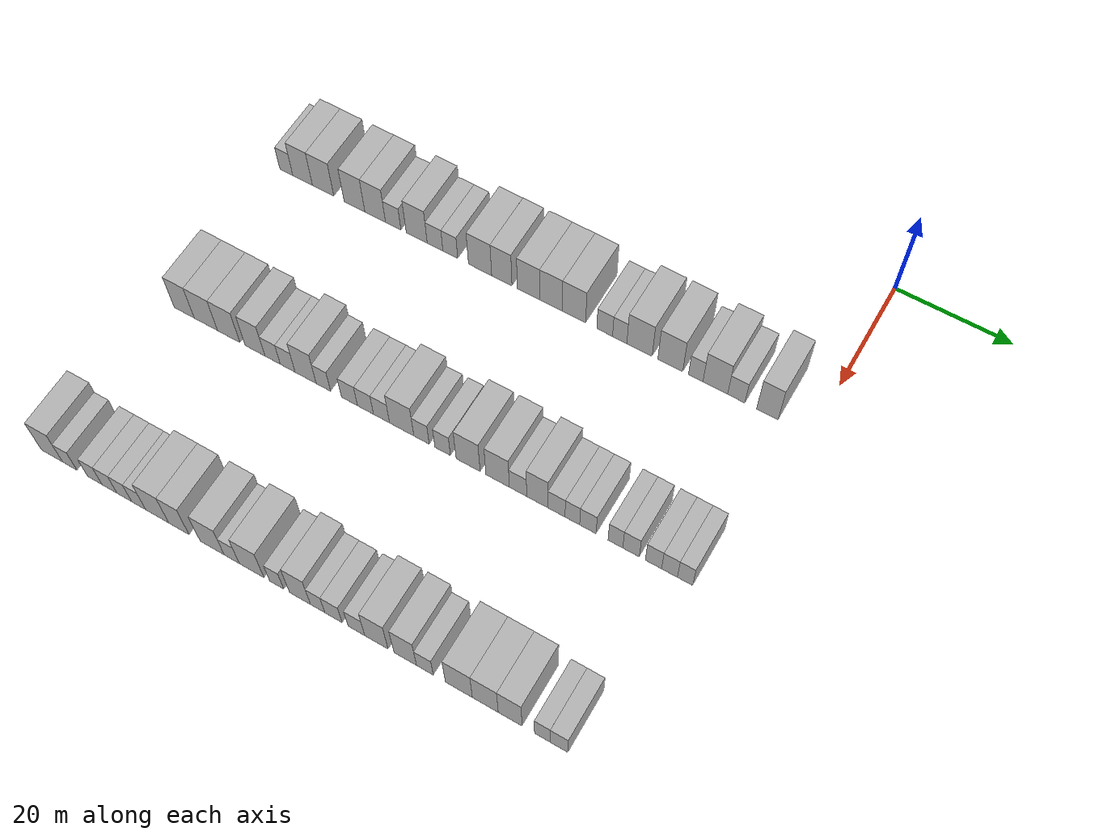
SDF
<sdf version="1.6">
 <world name="default">
  <model name="building_49">
   <static>1</static>
   <pose>25.0000 -95.3936 0 0.000000 0.000000 0.000000</pose>
   <link name="link">
    <pose>0 0 3.00 0 0 0</pose>
    <collision name="collision"><geometry><box><size>10.0000 2.5530 6.0000</size></box></geometry></collision>
    <visual name="visual">
     <cast_shadows>0</cast_shadows>
     <geometry><box><size>10.0000 2.5530 6.0000</size></box></geometry>
     <material>
      <script>
       <uri>model://HANNAS_wall/materials/scripts</uri>
       <uri>model://HANNAS_wall/materials/textures</uri>
       <name>vrc/HANNAS_wall</name>
      </script>
     </material>
    </visual>
   </link>
  </model>
  <model name="building_50">
   <static>1</static>
   <pose>25.0000 -92.1863 0 0.000000 0.000000 0.000000</pose>
   <link name="link">
    <pose>0 0 4.50 0 0 0</pose>
    <collision name="collision"><geometry><box><size>10.0000 3.8615 9.0000</size></box></geometry></collision>
    <visual name="visual">
     <cast_shadows>0</cast_shadows>
     <geometry><box><size>10.0000 3.8615 9.0000</size></box></geometry>
     <material>
      <script>
       <uri>model://HANNAS_wall/materials/scripts</uri>
       <uri>model://HANNAS_wall/materials/textures</uri>
       <name>vrc/HANNAS_wall</name>
      </script>
     </material>
    </visual>
   </link>
  </model>
  <model name="building_51">
   <static>1</static>
   <pose>25.0000 -88.1677 0 0.000000 0.000000 0.000000</pose>
   <link name="link">
    <pose>0 0 4.50 0 0 0</pose>
    <collision name="collision"><geometry><box><size>10.0000 4.1758 9.0000</size></box></geometry></collision>
    <visual name="visual">
     <cast_shadows>0</cast_shadows>
     <geometry><box><size>10.0000 4.1758 9.0000</size></box></geometry>
     <material>
      <script>
       <uri>model://HANNAS_wall/materials/scripts</uri>
       <uri>model://HANNAS_wall/materials/textures</uri>
       <name>vrc/HANNAS_wall</name>
      </script>
     </material>
    </visual>
   </link>
  </model>
  <model name="building_52">
   <static>1</static>
   <pose>25.0000 -82.0708 0 0.000000 0.000000 0.000000</pose>
   <link name="link">
    <pose>0 0 4.50 0 0 0</pose>
    <collision name="collision"><geometry><box><size>10.0000 4.0179 9.0000</size></box></geometry></collision>
    <visual name="visual">
     <cast_shadows>0</cast_shadows>
     <geometry><box><size>10.0000 4.0179 9.0000</size></box></geometry>
     <material>
      <script>
       <uri>model://HANNAS_wall/materials/scripts</uri>
       <uri>model://HANNAS_wall/materials/textures</uri>
       <name>vrc/HANNAS_wall</name>
      </script>
     </material>
    </visual>
   </link>
  </model>
  <model name="building_53">
   <static>1</static>
   <pose>25.0000 -78.0774 0 0.000000 0.000000 0.000000</pose>
   <link name="link">
    <pose>0 0 4.50 0 0 0</pose>
    <collision name="collision"><geometry><box><size>10.0000 3.9689 9.0000</size></box></geometry></collision>
    <visual name="visual">
     <cast_shadows>0</cast_shadows>
     <geometry><box><size>10.0000 3.9689 9.0000</size></box></geometry>
     <material>
      <script>
       <uri>model://HANNAS_wall/materials/scripts</uri>
       <uri>model://HANNAS_wall/materials/textures</uri>
       <name>vrc/HANNAS_wall</name>
      </script>
     </material>
    </visual>
   </link>
  </model>
  <model name="building_54">
   <static>1</static>
   <pose>25.0000 -74.6206 0 0.000000 0.000000 0.000000</pose>
   <link name="link">
    <pose>0 0 3.00 0 0 0</pose>
    <collision name="collision"><geometry><box><size>10.0000 2.9447 6.0000</size></box></geometry></collision>
    <visual name="visual">
     <cast_shadows>0</cast_shadows>
     <geometry><box><size>10.0000 2.9447 6.0000</size></box></geometry>
     <material>
      <script>
       <uri>model://HANNAS_wall/materials/scripts</uri>
       <uri>model://HANNAS_wall/materials/textures</uri>
       <name>vrc/HANNAS_wall</name>
      </script>
     </material>
    </visual>
   </link>
  </model>
  <model name="building_55">
   <static>1</static>
   <pose>25.0000 -70.1564 0 0.000000 0.000000 0.000000</pose>
   <link name="link">
    <pose>0 0 4.50 0 0 0</pose>
    <collision name="collision"><geometry><box><size>10.0000 3.9838 9.0000</size></box></geometry></collision>
    <visual name="visual">
     <cast_shadows>0</cast_shadows>
     <geometry><box><size>10.0000 3.9838 9.0000</size></box></geometry>
     <material>
      <script>
       <uri>model://HANNAS_wall/materials/scripts</uri>
       <uri>model://HANNAS_wall/materials/textures</uri>
       <name>vrc/HANNAS_wall</name>
      </script>
     </material>
    </visual>
   </link>
  </model>
  <model name="building_56">
   <static>1</static>
   <pose>25.0000 -66.6888 0 0.000000 0.000000 0.000000</pose>
   <link name="link">
    <pose>0 0 3.00 0 0 0</pose>
    <collision name="collision"><geometry><box><size>10.0000 2.9513 6.0000</size></box></geometry></collision>
    <visual name="visual">
     <cast_shadows>0</cast_shadows>
     <geometry><box><size>10.0000 2.9513 6.0000</size></box></geometry>
     <material>
      <script>
       <uri>model://HANNAS_wall/materials/scripts</uri>
       <uri>model://HANNAS_wall/materials/textures</uri>
       <name>vrc/HANNAS_wall</name>
      </script>
     </material>
    </visual>
   </link>
  </model>
  <model name="building_57">
   <static>1</static>
   <pose>25.0000 -63.8267 0 0.000000 0.000000 0.000000</pose>
   <link name="link">
    <pose>0 0 3.00 0 0 0</pose>
    <collision name="collision"><geometry><box><size>10.0000 2.7731 6.0000</size></box></geometry></collision>
    <visual name="visual">
     <cast_shadows>0</cast_shadows>
     <geometry><box><size>10.0000 2.7731 6.0000</size></box></geometry>
     <material>
      <script>
       <uri>model://HANNAS_wall/materials/scripts</uri>
       <uri>model://HANNAS_wall/materials/textures</uri>
       <name>vrc/HANNAS_wall</name>
      </script>
     </material>
    </visual>
   </link>
  </model>
  <model name="building_58">
   <static>1</static>
   <pose>25.0000 -58.2879 0 0.000000 0.000000 0.000000</pose>
   <link name="link">
    <pose>0 0 4.50 0 0 0</pose>
    <collision name="collision"><geometry><box><size>10.0000 4.3045 9.0000</size></box></geometry></collision>
    <visual name="visual">
     <cast_shadows>0</cast_shadows>
     <geometry><box><size>10.0000 4.3045 9.0000</size></box></geometry>
     <material>
      <script>
       <uri>model://HANNAS_wall/materials/scripts</uri>
       <uri>model://HANNAS_wall/materials/textures</uri>
       <name>vrc/HANNAS_wall</name>
      </script>
     </material>
    </visual>
   </link>
  </model>
  <model name="building_59">
   <static>1</static>
   <pose>25.0000 -54.2696 0 0.000000 0.000000 0.000000</pose>
   <link name="link">
    <pose>0 0 4.50 0 0 0</pose>
    <collision name="collision"><geometry><box><size>10.0000 3.7320 9.0000</size></box></geometry></collision>
    <visual name="visual">
     <cast_shadows>0</cast_shadows>
     <geometry><box><size>10.0000 3.7320 9.0000</size></box></geometry>
     <material>
      <script>
       <uri>model://HANNAS_wall/materials/scripts</uri>
       <uri>model://HANNAS_wall/materials/textures</uri>
       <name>vrc/HANNAS_wall</name>
      </script>
     </material>
    </visual>
   </link>
  </model>
  <model name="building_60">
   <static>1</static>
   <pose>25.0000 -49.3523 0 0.000000 0.000000 0.000000</pose>
   <link name="link">
    <pose>0 0 4.50 0 0 0</pose>
    <collision name="collision"><geometry><box><size>10.0000 4.1026 9.0000</size></box></geometry></collision>
    <visual name="visual">
     <cast_shadows>0</cast_shadows>
     <geometry><box><size>10.0000 4.1026 9.0000</size></box></geometry>
     <material>
      <script>
       <uri>model://HANNAS_wall/materials/scripts</uri>
       <uri>model://HANNAS_wall/materials/textures</uri>
       <name>vrc/HANNAS_wall</name>
      </script>
     </material>
    </visual>
   </link>
  </model>
  <model name="building_61">
   <static>1</static>
   <pose>25.0000 -45.2732 0 0.000000 0.000000 0.000000</pose>
   <link name="link">
    <pose>0 0 4.50 0 0 0</pose>
    <collision name="collision"><geometry><box><size>10.0000 4.0556 9.0000</size></box></geometry></collision>
    <visual name="visual">
     <cast_shadows>0</cast_shadows>
     <geometry><box><size>10.0000 4.0556 9.0000</size></box></geometry>
     <material>
      <script>
       <uri>model://HANNAS_wall/materials/scripts</uri>
       <uri>model://HANNAS_wall/materials/textures</uri>
       <name>vrc/HANNAS_wall</name>
      </script>
     </material>
    </visual>
   </link>
  </model>
  <model name="building_62">
   <static>1</static>
   <pose>25.0000 -41.1452 0 0.000000 0.000000 0.000000</pose>
   <link name="link">
    <pose>0 0 4.50 0 0 0</pose>
    <collision name="collision"><geometry><box><size>10.0000 4.2004 9.0000</size></box></geometry></collision>
    <visual name="visual">
     <cast_shadows>0</cast_shadows>
     <geometry><box><size>10.0000 4.2004 9.0000</size></box></geometry>
     <material>
      <script>
       <uri>model://HANNAS_wall/materials/scripts</uri>
       <uri>model://HANNAS_wall/materials/textures</uri>
       <name>vrc/HANNAS_wall</name>
      </script>
     </material>
    </visual>
   </link>
  </model>
  <model name="building_63">
   <static>1</static>
   <pose>25.0000 -35.6454 0 0.000000 0.000000 0.000000</pose>
   <link name="link">
    <pose>0 0 3.00 0 0 0</pose>
    <collision name="collision"><geometry><box><size>10.0000 2.7993 6.0000</size></box></geometry></collision>
    <visual name="visual">
     <cast_shadows>0</cast_shadows>
     <geometry><box><size>10.0000 2.7993 6.0000</size></box></geometry>
     <material>
      <script>
       <uri>model://HANNAS_wall/materials/scripts</uri>
       <uri>model://HANNAS_wall/materials/textures</uri>
       <name>vrc/HANNAS_wall</name>
      </script>
     </material>
    </visual>
   </link>
  </model>
  <model name="building_64">
   <static>1</static>
   <pose>25.0000 -32.9862 0 0.000000 0.000000 0.000000</pose>
   <link name="link">
    <pose>0 0 3.00 0 0 0</pose>
    <collision name="collision"><geometry><box><size>10.0000 2.5192 6.0000</size></box></geometry></collision>
    <visual name="visual">
     <cast_shadows>0</cast_shadows>
     <geometry><box><size>10.0000 2.5192 6.0000</size></box></geometry>
     <material>
      <script>
       <uri>model://HANNAS_wall/materials/scripts</uri>
       <uri>model://HANNAS_wall/materials/textures</uri>
       <name>vrc/HANNAS_wall</name>
      </script>
     </material>
    </visual>
   </link>
  </model>
  <model name="building_65">
   <static>1</static>
   <pose>25.0000 -29.4968 0 0.000000 0.000000 0.000000</pose>
   <link name="link">
    <pose>0 0 4.50 0 0 0</pose>
    <collision name="collision"><geometry><box><size>10.0000 4.4595 9.0000</size></box></geometry></collision>
    <visual name="visual">
     <cast_shadows>0</cast_shadows>
     <geometry><box><size>10.0000 4.4595 9.0000</size></box></geometry>
     <material>
      <script>
       <uri>model://HANNAS_wall/materials/scripts</uri>
       <uri>model://HANNAS_wall/materials/textures</uri>
       <name>vrc/HANNAS_wall</name>
      </script>
     </material>
    </visual>
   </link>
  </model>
  <model name="building_66">
   <static>1</static>
   <pose>25.0000 -24.0957 0 0.000000 0.000000 0.000000</pose>
   <link name="link">
    <pose>0 0 4.50 0 0 0</pose>
    <collision name="collision"><geometry><box><size>10.0000 4.3427 9.0000</size></box></geometry></collision>
    <visual name="visual">
     <cast_shadows>0</cast_shadows>
     <geometry><box><size>10.0000 4.3427 9.0000</size></box></geometry>
     <material>
      <script>
       <uri>model://HANNAS_wall/materials/scripts</uri>
       <uri>model://HANNAS_wall/materials/textures</uri>
       <name>vrc/HANNAS_wall</name>
      </script>
     </material>
    </visual>
   </link>
  </model>
  <model name="building_67">
   <static>1</static>
   <pose>25.0000 -19.6788 0 0.000000 0.000000 0.000000</pose>
   <link name="link">
    <pose>0 0 3.00 0 0 0</pose>
    <collision name="collision"><geometry><box><size>10.0000 2.4911 6.0000</size></box></geometry></collision>
    <visual name="visual">
     <cast_shadows>0</cast_shadows>
     <geometry><box><size>10.0000 2.4911 6.0000</size></box></geometry>
     <material>
      <script>
       <uri>model://HANNAS_wall/materials/scripts</uri>
       <uri>model://HANNAS_wall/materials/textures</uri>
       <name>vrc/HANNAS_wall</name>
      </script>
     </material>
    </visual>
   </link>
  </model>
  <model name="building_68">
   <static>1</static>
   <pose>25.0000 -16.3097 0 0.000000 0.000000 0.000000</pose>
   <link name="link">
    <pose>0 0 4.50 0 0 0</pose>
    <collision name="collision"><geometry><box><size>10.0000 4.2470 9.0000</size></box></geometry></collision>
    <visual name="visual">
     <cast_shadows>0</cast_shadows>
     <geometry><box><size>10.0000 4.2470 9.0000</size></box></geometry>
     <material>
      <script>
       <uri>model://HANNAS_wall/materials/scripts</uri>
       <uri>model://HANNAS_wall/materials/textures</uri>
       <name>vrc/HANNAS_wall</name>
      </script>
     </material>
    </visual>
   </link>
  </model>
  <model name="building_69">
   <static>1</static>
   <pose>25.0000 -12.7154 0 0.000000 0.000000 0.000000</pose>
   <link name="link">
    <pose>0 0 3.00 0 0 0</pose>
    <collision name="collision"><geometry><box><size>10.0000 2.9417 6.0000</size></box></geometry></collision>
    <visual name="visual">
     <cast_shadows>0</cast_shadows>
     <geometry><box><size>10.0000 2.9417 6.0000</size></box></geometry>
     <material>
      <script>
       <uri>model://HANNAS_wall/materials/scripts</uri>
       <uri>model://HANNAS_wall/materials/textures</uri>
       <name>vrc/HANNAS_wall</name>
      </script>
     </material>
    </visual>
   </link>
  </model>
  <model name="building_70">
   <static>1</static>
   <pose>25.0000 -7.4252 0 0.000000 0.000000 0.000000</pose>
   <link name="link">
    <pose>0 0 4.50 0 0 0</pose>
    <collision name="collision"><geometry><box><size>10.0000 3.6388 9.0000</size></box></geometry></collision>
    <visual name="visual">
     <cast_shadows>0</cast_shadows>
     <geometry><box><size>10.0000 3.6388 9.0000</size></box></geometry>
     <material>
      <script>
       <uri>model://HANNAS_wall/materials/scripts</uri>
       <uri>model://HANNAS_wall/materials/textures</uri>
       <name>vrc/HANNAS_wall</name>
      </script>
     </material>
    </visual>
   </link>
  </model>
  <model name="building_191">
   <static>1</static>
   <pose>55.0000 -94.1088 0 0.000000 0.000000 0.000000</pose>
   <link name="link">
    <pose>0 0 4.50 0 0 0</pose>
    <collision name="collision"><geometry><box><size>10.0000 3.8417 9.0000</size></box></geometry></collision>
    <visual name="visual">
     <cast_shadows>0</cast_shadows>
     <geometry><box><size>10.0000 3.8417 9.0000</size></box></geometry>
     <material>
      <script>
       <uri>model://HANNAS_wall/materials/scripts</uri>
       <uri>model://HANNAS_wall/materials/textures</uri>
       <name>vrc/HANNAS_wall</name>
      </script>
     </material>
    </visual>
   </link>
  </model>
  <model name="building_192">
   <static>1</static>
   <pose>55.0000 -89.9693 0 0.000000 0.000000 0.000000</pose>
   <link name="link">
    <pose>0 0 4.50 0 0 0</pose>
    <collision name="collision"><geometry><box><size>10.0000 4.4374 9.0000</size></box></geometry></collision>
    <visual name="visual">
     <cast_shadows>0</cast_shadows>
     <geometry><box><size>10.0000 4.4374 9.0000</size></box></geometry>
     <material>
      <script>
       <uri>model://HANNAS_wall/materials/scripts</uri>
       <uri>model://HANNAS_wall/materials/textures</uri>
       <name>vrc/HANNAS_wall</name>
      </script>
     </material>
    </visual>
   </link>
  </model>
  <model name="building_193">
   <static>1</static>
   <pose>55.0000 -85.6271 0 0.000000 0.000000 0.000000</pose>
   <link name="link">
    <pose>0 0 4.50 0 0 0</pose>
    <collision name="collision"><geometry><box><size>10.0000 4.2471 9.0000</size></box></geometry></collision>
    <visual name="visual">
     <cast_shadows>0</cast_shadows>
     <geometry><box><size>10.0000 4.2471 9.0000</size></box></geometry>
     <material>
      <script>
       <uri>model://HANNAS_wall/materials/scripts</uri>
       <uri>model://HANNAS_wall/materials/textures</uri>
       <name>vrc/HANNAS_wall</name>
      </script>
     </material>
    </visual>
   </link>
  </model>
  <model name="building_194">
   <static>1</static>
   <pose>55.0000 -80.6569 0 0.000000 0.000000 0.000000</pose>
   <link name="link">
    <pose>0 0 4.50 0 0 0</pose>
    <collision name="collision"><geometry><box><size>10.0000 3.6933 9.0000</size></box></geometry></collision>
    <visual name="visual">
     <cast_shadows>0</cast_shadows>
     <geometry><box><size>10.0000 3.6933 9.0000</size></box></geometry>
     <material>
      <script>
       <uri>model://HANNAS_wall/materials/scripts</uri>
       <uri>model://HANNAS_wall/materials/textures</uri>
       <name>vrc/HANNAS_wall</name>
      </script>
     </material>
    </visual>
   </link>
  </model>
  <model name="building_195">
   <static>1</static>
   <pose>55.0000 -77.3791 0 0.000000 0.000000 0.000000</pose>
   <link name="link">
    <pose>0 0 3.00 0 0 0</pose>
    <collision name="collision"><geometry><box><size>10.0000 2.8623 6.0000</size></box></geometry></collision>
    <visual name="visual">
     <cast_shadows>0</cast_shadows>
     <geometry><box><size>10.0000 2.8623 6.0000</size></box></geometry>
     <material>
      <script>
       <uri>model://HANNAS_wall/materials/scripts</uri>
       <uri>model://HANNAS_wall/materials/textures</uri>
       <name>vrc/HANNAS_wall</name>
      </script>
     </material>
    </visual>
   </link>
  </model>
  <model name="building_196">
   <static>1</static>
   <pose>55.0000 -74.5722 0 0.000000 0.000000 0.000000</pose>
   <link name="link">
    <pose>0 0 3.00 0 0 0</pose>
    <collision name="collision"><geometry><box><size>10.0000 2.7514 6.0000</size></box></geometry></collision>
    <visual name="visual">
     <cast_shadows>0</cast_shadows>
     <geometry><box><size>10.0000 2.7514 6.0000</size></box></geometry>
     <material>
      <script>
       <uri>model://HANNAS_wall/materials/scripts</uri>
       <uri>model://HANNAS_wall/materials/textures</uri>
       <name>vrc/HANNAS_wall</name>
      </script>
     </material>
    </visual>
   </link>
  </model>
  <model name="building_197">
   <static>1</static>
   <pose>55.0000 -71.2522 0 0.000000 0.000000 0.000000</pose>
   <link name="link">
    <pose>0 0 4.50 0 0 0</pose>
    <collision name="collision"><geometry><box><size>10.0000 3.8885 9.0000</size></box></geometry></collision>
    <visual name="visual">
     <cast_shadows>0</cast_shadows>
     <geometry><box><size>10.0000 3.8885 9.0000</size></box></geometry>
     <material>
      <script>
       <uri>model://HANNAS_wall/materials/scripts</uri>
       <uri>model://HANNAS_wall/materials/textures</uri>
       <name>vrc/HANNAS_wall</name>
      </script>
     </material>
    </visual>
   </link>
  </model>
  <model name="building_198">
   <static>1</static>
   <pose>55.0000 -67.9946 0 0.000000 0.000000 0.000000</pose>
   <link name="link">
    <pose>0 0 3.00 0 0 0</pose>
    <collision name="collision"><geometry><box><size>10.0000 2.6268 6.0000</size></box></geometry></collision>
    <visual name="visual">
     <cast_shadows>0</cast_shadows>
     <geometry><box><size>10.0000 2.6268 6.0000</size></box></geometry>
     <material>
      <script>
       <uri>model://HANNAS_wall/materials/scripts</uri>
       <uri>model://HANNAS_wall/materials/textures</uri>
       <name>vrc/HANNAS_wall</name>
      </script>
     </material>
    </visual>
   </link>
  </model>
  <model name="building_199">
   <static>1</static>
   <pose>55.0000 -63.2270 0 0.000000 0.000000 0.000000</pose>
   <link name="link">
    <pose>0 0 3.00 0 0 0</pose>
    <collision name="collision"><geometry><box><size>10.0000 2.9083 6.0000</size></box></geometry></collision>
    <visual name="visual">
     <cast_shadows>0</cast_shadows>
     <geometry><box><size>10.0000 2.9083 6.0000</size></box></geometry>
     <material>
      <script>
       <uri>model://HANNAS_wall/materials/scripts</uri>
       <uri>model://HANNAS_wall/materials/textures</uri>
       <name>vrc/HANNAS_wall</name>
      </script>
     </material>
    </visual>
   </link>
  </model>
  <model name="building_200">
   <static>1</static>
   <pose>55.0000 -60.3225 0 0.000000 0.000000 0.000000</pose>
   <link name="link">
    <pose>0 0 3.00 0 0 0</pose>
    <collision name="collision"><geometry><box><size>10.0000 2.9006 6.0000</size></box></geometry></collision>
    <visual name="visual">
     <cast_shadows>0</cast_shadows>
     <geometry><box><size>10.0000 2.9006 6.0000</size></box></geometry>
     <material>
      <script>
       <uri>model://HANNAS_wall/materials/scripts</uri>
       <uri>model://HANNAS_wall/materials/textures</uri>
       <name>vrc/HANNAS_wall</name>
      </script>
     </material>
    </visual>
   </link>
  </model>
  <model name="building_201">
   <static>1</static>
   <pose>55.0000 -57.4290 0 0.000000 0.000000 0.000000</pose>
   <link name="link">
    <pose>0 0 3.00 0 0 0</pose>
    <collision name="collision"><geometry><box><size>10.0000 2.8864 6.0000</size></box></geometry></collision>
    <visual name="visual">
     <cast_shadows>0</cast_shadows>
     <geometry><box><size>10.0000 2.8864 6.0000</size></box></geometry>
     <material>
      <script>
       <uri>model://HANNAS_wall/materials/scripts</uri>
       <uri>model://HANNAS_wall/materials/textures</uri>
       <name>vrc/HANNAS_wall</name>
      </script>
     </material>
    </visual>
   </link>
  </model>
  <model name="building_202">
   <static>1</static>
   <pose>55.0000 -53.8174 0 0.000000 0.000000 0.000000</pose>
   <link name="link">
    <pose>0 0 4.50 0 0 0</pose>
    <collision name="collision"><geometry><box><size>10.0000 4.3368 9.0000</size></box></geometry></collision>
    <visual name="visual">
     <cast_shadows>0</cast_shadows>
     <geometry><box><size>10.0000 4.3368 9.0000</size></box></geometry>
     <material>
      <script>
       <uri>model://HANNAS_wall/materials/scripts</uri>
       <uri>model://HANNAS_wall/materials/textures</uri>
       <name>vrc/HANNAS_wall</name>
      </script>
     </material>
    </visual>
   </link>
  </model>
  <model name="building_203">
   <static>1</static>
   <pose>55.0000 -50.2923 0 0.000000 0.000000 0.000000</pose>
   <link name="link">
    <pose>0 0 3.00 0 0 0</pose>
    <collision name="collision"><geometry><box><size>10.0000 2.7134 6.0000</size></box></geometry></collision>
    <visual name="visual">
     <cast_shadows>0</cast_shadows>
     <geometry><box><size>10.0000 2.7134 6.0000</size></box></geometry>
     <material>
      <script>
       <uri>model://HANNAS_wall/materials/scripts</uri>
       <uri>model://HANNAS_wall/materials/textures</uri>
       <name>vrc/HANNAS_wall</name>
      </script>
     </material>
    </visual>
   </link>
  </model>
  <model name="building_204">
   <static>1</static>
   <pose>55.0000 -46.5699 0 0.000000 0.000000 0.000000</pose>
   <link name="link">
    <pose>0 0 3.00 0 0 0</pose>
    <collision name="collision"><geometry><box><size>10.0000 2.7314 6.0000</size></box></geometry></collision>
    <visual name="visual">
     <cast_shadows>0</cast_shadows>
     <geometry><box><size>10.0000 2.7314 6.0000</size></box></geometry>
     <material>
      <script>
       <uri>model://HANNAS_wall/materials/scripts</uri>
       <uri>model://HANNAS_wall/materials/textures</uri>
       <name>vrc/HANNAS_wall</name>
      </script>
     </material>
    </visual>
   </link>
  </model>
  <model name="building_205">
   <static>1</static>
   <pose>55.0000 -42.1099 0 0.000000 0.000000 0.000000</pose>
   <link name="link">
    <pose>0 0 4.50 0 0 0</pose>
    <collision name="collision"><geometry><box><size>10.0000 4.1886 9.0000</size></box></geometry></collision>
    <visual name="visual">
     <cast_shadows>0</cast_shadows>
     <geometry><box><size>10.0000 4.1886 9.0000</size></box></geometry>
     <material>
      <script>
       <uri>model://HANNAS_wall/materials/scripts</uri>
       <uri>model://HANNAS_wall/materials/textures</uri>
       <name>vrc/HANNAS_wall</name>
      </script>
     </material>
    </visual>
   </link>
  </model>
  <model name="building_206">
   <static>1</static>
   <pose>55.0000 -36.9923 0 0.000000 0.000000 0.000000</pose>
   <link name="link">
    <pose>0 0 4.50 0 0 0</pose>
    <collision name="collision"><geometry><box><size>10.0000 4.0466 9.0000</size></box></geometry></collision>
    <visual name="visual">
     <cast_shadows>0</cast_shadows>
     <geometry><box><size>10.0000 4.0466 9.0000</size></box></geometry>
     <material>
      <script>
       <uri>model://HANNAS_wall/materials/scripts</uri>
       <uri>model://HANNAS_wall/materials/textures</uri>
       <name>vrc/HANNAS_wall</name>
      </script>
     </material>
    </visual>
   </link>
  </model>
  <model name="building_207">
   <static>1</static>
   <pose>55.0000 -33.4766 0 0.000000 0.000000 0.000000</pose>
   <link name="link">
    <pose>0 0 3.00 0 0 0</pose>
    <collision name="collision"><geometry><box><size>10.0000 2.9849 6.0000</size></box></geometry></collision>
    <visual name="visual">
     <cast_shadows>0</cast_shadows>
     <geometry><box><size>10.0000 2.9849 6.0000</size></box></geometry>
     <material>
      <script>
       <uri>model://HANNAS_wall/materials/scripts</uri>
       <uri>model://HANNAS_wall/materials/textures</uri>
       <name>vrc/HANNAS_wall</name>
      </script>
     </material>
    </visual>
   </link>
  </model>
  <model name="building_208">
   <static>1</static>
   <pose>55.0000 -30.1558 0 0.000000 0.000000 0.000000</pose>
   <link name="link">
    <pose>0 0 4.50 0 0 0</pose>
    <collision name="collision"><geometry><box><size>10.0000 3.6567 9.0000</size></box></geometry></collision>
    <visual name="visual">
     <cast_shadows>0</cast_shadows>
     <geometry><box><size>10.0000 3.6567 9.0000</size></box></geometry>
     <material>
      <script>
       <uri>model://HANNAS_wall/materials/scripts</uri>
       <uri>model://HANNAS_wall/materials/textures</uri>
       <name>vrc/HANNAS_wall</name>
      </script>
     </material>
    </visual>
   </link>
  </model>
  <model name="building_209">
   <static>1</static>
   <pose>55.0000 -26.8970 0 0.000000 0.000000 0.000000</pose>
   <link name="link">
    <pose>0 0 3.00 0 0 0</pose>
    <collision name="collision"><geometry><box><size>10.0000 2.8609 6.0000</size></box></geometry></collision>
    <visual name="visual">
     <cast_shadows>0</cast_shadows>
     <geometry><box><size>10.0000 2.8609 6.0000</size></box></geometry>
     <material>
      <script>
       <uri>model://HANNAS_wall/materials/scripts</uri>
       <uri>model://HANNAS_wall/materials/textures</uri>
       <name>vrc/HANNAS_wall</name>
      </script>
     </material>
    </visual>
   </link>
  </model>
  <model name="building_210">
   <static>1</static>
   <pose>55.0000 -24.2312 0 0.000000 0.000000 0.000000</pose>
   <link name="link">
    <pose>0 0 3.00 0 0 0</pose>
    <collision name="collision"><geometry><box><size>10.0000 2.4706 6.0000</size></box></geometry></collision>
    <visual name="visual">
     <cast_shadows>0</cast_shadows>
     <geometry><box><size>10.0000 2.4706 6.0000</size></box></geometry>
     <material>
      <script>
       <uri>model://HANNAS_wall/materials/scripts</uri>
       <uri>model://HANNAS_wall/materials/textures</uri>
       <name>vrc/HANNAS_wall</name>
      </script>
     </material>
    </visual>
   </link>
  </model>
  <model name="building_211">
   <static>1</static>
   <pose>55.0000 -21.6189 0 0.000000 0.000000 0.000000</pose>
   <link name="link">
    <pose>0 0 3.00 0 0 0</pose>
    <collision name="collision"><geometry><box><size>10.0000 2.7541 6.0000</size></box></geometry></collision>
    <visual name="visual">
     <cast_shadows>0</cast_shadows>
     <geometry><box><size>10.0000 2.7541 6.0000</size></box></geometry>
     <material>
      <script>
       <uri>model://HANNAS_wall/materials/scripts</uri>
       <uri>model://HANNAS_wall/materials/textures</uri>
       <name>vrc/HANNAS_wall</name>
      </script>
     </material>
    </visual>
   </link>
  </model>
  <model name="building_212">
   <static>1</static>
   <pose>55.0000 -17.0191 0 0.000000 0.000000 0.000000</pose>
   <link name="link">
    <pose>0 0 3.00 0 0 0</pose>
    <collision name="collision"><geometry><box><size>10.0000 2.4455 6.0000</size></box></geometry></collision>
    <visual name="visual">
     <cast_shadows>0</cast_shadows>
     <geometry><box><size>10.0000 2.4455 6.0000</size></box></geometry>
     <material>
      <script>
       <uri>model://HANNAS_wall/materials/scripts</uri>
       <uri>model://HANNAS_wall/materials/textures</uri>
       <name>vrc/HANNAS_wall</name>
      </script>
     </material>
    </visual>
   </link>
  </model>
  <model name="building_213">
   <static>1</static>
   <pose>55.0000 -14.4348 0 0.000000 0.000000 0.000000</pose>
   <link name="link">
    <pose>0 0 3.00 0 0 0</pose>
    <collision name="collision"><geometry><box><size>10.0000 2.7231 6.0000</size></box></geometry></collision>
    <visual name="visual">
     <cast_shadows>0</cast_shadows>
     <geometry><box><size>10.0000 2.7231 6.0000</size></box></geometry>
     <material>
      <script>
       <uri>model://HANNAS_wall/materials/scripts</uri>
       <uri>model://HANNAS_wall/materials/textures</uri>
       <name>vrc/HANNAS_wall</name>
      </script>
     </material>
    </visual>
   </link>
  </model>
  <model name="building_214">
   <static>1</static>
   <pose>55.0000 -10.7396 0 0.000000 0.000000 0.000000</pose>
   <link name="link">
    <pose>0 0 3.00 0 0 0</pose>
    <collision name="collision"><geometry><box><size>10.0000 2.6674 6.0000</size></box></geometry></collision>
    <visual name="visual">
     <cast_shadows>0</cast_shadows>
     <geometry><box><size>10.0000 2.6674 6.0000</size></box></geometry>
     <material>
      <script>
       <uri>model://HANNAS_wall/materials/scripts</uri>
       <uri>model://HANNAS_wall/materials/textures</uri>
       <name>vrc/HANNAS_wall</name>
      </script>
     </material>
    </visual>
   </link>
  </model>
  <model name="building_215">
   <static>1</static>
   <pose>55.0000 -8.1157 0 0.000000 0.000000 0.000000</pose>
   <link name="link">
    <pose>0 0 3.00 0 0 0</pose>
    <collision name="collision"><geometry><box><size>10.0000 2.5802 6.0000</size></box></geometry></collision>
    <visual name="visual">
     <cast_shadows>0</cast_shadows>
     <geometry><box><size>10.0000 2.5802 6.0000</size></box></geometry>
     <material>
      <script>
       <uri>model://HANNAS_wall/materials/scripts</uri>
       <uri>model://HANNAS_wall/materials/textures</uri>
       <name>vrc/HANNAS_wall</name>
      </script>
     </material>
    </visual>
   </link>
  </model>
  <model name="building_216">
   <static>1</static>
   <pose>55.0000 -5.5767 0 0.000000 0.000000 0.000000</pose>
   <link name="link">
    <pose>0 0 3.00 0 0 0</pose>
    <collision name="collision"><geometry><box><size>10.0000 2.4977 6.0000</size></box></geometry></collision>
    <visual name="visual">
     <cast_shadows>0</cast_shadows>
     <geometry><box><size>10.0000 2.4977 6.0000</size></box></geometry>
     <material>
      <script>
       <uri>model://HANNAS_wall/materials/scripts</uri>
       <uri>model://HANNAS_wall/materials/textures</uri>
       <name>vrc/HANNAS_wall</name>
      </script>
     </material>
    </visual>
   </link>
  </model>
  <model name="building_337">
   <static>1</static>
   <pose>85.0000 -96.5379 0 0.000000 0.000000 0.000000</pose>
   <link name="link">
    <pose>0 0 4.50 0 0 0</pose>
    <collision name="collision"><geometry><box><size>10.0000 4.0118 9.0000</size></box></geometry></collision>
    <visual name="visual">
     <cast_shadows>0</cast_shadows>
     <geometry><box><size>10.0000 4.0118 9.0000</size></box></geometry>
     <material>
      <script>
       <uri>model://HANNAS_wall/materials/scripts</uri>
       <uri>model://HANNAS_wall/materials/textures</uri>
       <name>vrc/HANNAS_wall</name>
      </script>
     </material>
    </visual>
   </link>
  </model>
  <model name="building_338">
   <static>1</static>
   <pose>85.0000 -93.2074 0 0.000000 0.000000 0.000000</pose>
   <link name="link">
    <pose>0 0 3.00 0 0 0</pose>
    <collision name="collision"><geometry><box><size>10.0000 2.6492 6.0000</size></box></geometry></collision>
    <visual name="visual">
     <cast_shadows>0</cast_shadows>
     <geometry><box><size>10.0000 2.6492 6.0000</size></box></geometry>
     <material>
      <script>
       <uri>model://HANNAS_wall/materials/scripts</uri>
       <uri>model://HANNAS_wall/materials/textures</uri>
       <name>vrc/HANNAS_wall</name>
      </script>
     </material>
    </visual>
   </link>
  </model>
  <model name="building_339">
   <static>1</static>
   <pose>85.0000 -88.5370 0 0.000000 0.000000 0.000000</pose>
   <link name="link">
    <pose>0 0 3.00 0 0 0</pose>
    <collision name="collision"><geometry><box><size>10.0000 2.6916 6.0000</size></box></geometry></collision>
    <visual name="visual">
     <cast_shadows>0</cast_shadows>
     <geometry><box><size>10.0000 2.6916 6.0000</size></box></geometry>
     <material>
      <script>
       <uri>model://HANNAS_wall/materials/scripts</uri>
       <uri>model://HANNAS_wall/materials/textures</uri>
       <name>vrc/HANNAS_wall</name>
      </script>
     </material>
    </visual>
   </link>
  </model>
  <model name="building_340">
   <static>1</static>
   <pose>85.0000 -85.8173 0 0.000000 0.000000 0.000000</pose>
   <link name="link">
    <pose>0 0 3.00 0 0 0</pose>
    <collision name="collision"><geometry><box><size>10.0000 2.7479 6.0000</size></box></geometry></collision>
    <visual name="visual">
     <cast_shadows>0</cast_shadows>
     <geometry><box><size>10.0000 2.7479 6.0000</size></box></geometry>
     <material>
      <script>
       <uri>model://HANNAS_wall/materials/scripts</uri>
       <uri>model://HANNAS_wall/materials/textures</uri>
       <name>vrc/HANNAS_wall</name>
      </script>
     </material>
    </visual>
   </link>
  </model>
  <model name="building_341">
   <static>1</static>
   <pose>85.0000 -83.1033 0 0.000000 0.000000 0.000000</pose>
   <link name="link">
    <pose>0 0 3.00 0 0 0</pose>
    <collision name="collision"><geometry><box><size>10.0000 2.6802 6.0000</size></box></geometry></collision>
    <visual name="visual">
     <cast_shadows>0</cast_shadows>
     <geometry><box><size>10.0000 2.6802 6.0000</size></box></geometry>
     <material>
      <script>
       <uri>model://HANNAS_wall/materials/scripts</uri>
       <uri>model://HANNAS_wall/materials/textures</uri>
       <name>vrc/HANNAS_wall</name>
      </script>
     </material>
    </visual>
   </link>
  </model>
  <model name="building_342">
   <static>1</static>
   <pose>85.0000 -80.4865 0 0.000000 0.000000 0.000000</pose>
   <link name="link">
    <pose>0 0 3.00 0 0 0</pose>
    <collision name="collision"><geometry><box><size>10.0000 2.5533 6.0000</size></box></geometry></collision>
    <visual name="visual">
     <cast_shadows>0</cast_shadows>
     <geometry><box><size>10.0000 2.5533 6.0000</size></box></geometry>
     <material>
      <script>
       <uri>model://HANNAS_wall/materials/scripts</uri>
       <uri>model://HANNAS_wall/materials/textures</uri>
       <name>vrc/HANNAS_wall</name>
      </script>
     </material>
    </visual>
   </link>
  </model>
  <model name="building_343">
   <static>1</static>
   <pose>85.0000 -77.1139 0 0.000000 0.000000 0.000000</pose>
   <link name="link">
    <pose>0 0 4.50 0 0 0</pose>
    <collision name="collision"><geometry><box><size>10.0000 4.1919 9.0000</size></box></geometry></collision>
    <visual name="visual">
     <cast_shadows>0</cast_shadows>
     <geometry><box><size>10.0000 4.1919 9.0000</size></box></geometry>
     <material>
      <script>
       <uri>model://HANNAS_wall/materials/scripts</uri>
       <uri>model://HANNAS_wall/materials/textures</uri>
       <name>vrc/HANNAS_wall</name>
      </script>
     </material>
    </visual>
   </link>
  </model>
  <model name="building_344">
   <static>1</static>
   <pose>85.0000 -73.2132 0 0.000000 0.000000 0.000000</pose>
   <link name="link">
    <pose>0 0 4.50 0 0 0</pose>
    <collision name="collision"><geometry><box><size>10.0000 3.6096 9.0000</size></box></geometry></collision>
    <visual name="visual">
     <cast_shadows>0</cast_shadows>
     <geometry><box><size>10.0000 3.6096 9.0000</size></box></geometry>
     <material>
      <script>
       <uri>model://HANNAS_wall/materials/scripts</uri>
       <uri>model://HANNAS_wall/materials/textures</uri>
       <name>vrc/HANNAS_wall</name>
      </script>
     </material>
    </visual>
   </link>
  </model>
  <model name="building_345">
   <static>1</static>
   <pose>85.0000 -67.2593 0 0.000000 0.000000 0.000000</pose>
   <link name="link">
    <pose>0 0 4.50 0 0 0</pose>
    <collision name="collision"><geometry><box><size>10.0000 4.2982 9.0000</size></box></geometry></collision>
    <visual name="visual">
     <cast_shadows>0</cast_shadows>
     <geometry><box><size>10.0000 4.2982 9.0000</size></box></geometry>
     <material>
      <script>
       <uri>model://HANNAS_wall/materials/scripts</uri>
       <uri>model://HANNAS_wall/materials/textures</uri>
       <name>vrc/HANNAS_wall</name>
      </script>
     </material>
    </visual>
   </link>
  </model>
  <model name="building_346">
   <static>1</static>
   <pose>85.0000 -63.7831 0 0.000000 0.000000 0.000000</pose>
   <link name="link">
    <pose>0 0 3.00 0 0 0</pose>
    <collision name="collision"><geometry><box><size>10.0000 2.6543 6.0000</size></box></geometry></collision>
    <visual name="visual">
     <cast_shadows>0</cast_shadows>
     <geometry><box><size>10.0000 2.6543 6.0000</size></box></geometry>
     <material>
      <script>
       <uri>model://HANNAS_wall/materials/scripts</uri>
       <uri>model://HANNAS_wall/materials/textures</uri>
       <name>vrc/HANNAS_wall</name>
      </script>
     </material>
    </visual>
   </link>
  </model>
  <model name="building_347">
   <static>1</static>
   <pose>85.0000 -60.2970 0 0.000000 0.000000 0.000000</pose>
   <link name="link">
    <pose>0 0 4.50 0 0 0</pose>
    <collision name="collision"><geometry><box><size>10.0000 4.3180 9.0000</size></box></geometry></collision>
    <visual name="visual">
     <cast_shadows>0</cast_shadows>
     <geometry><box><size>10.0000 4.3180 9.0000</size></box></geometry>
     <material>
      <script>
       <uri>model://HANNAS_wall/materials/scripts</uri>
       <uri>model://HANNAS_wall/materials/textures</uri>
       <name>vrc/HANNAS_wall</name>
      </script>
     </material>
    </visual>
   </link>
  </model>
  <model name="building_348">
   <static>1</static>
   <pose>85.0000 -55.9199 0 0.000000 0.000000 0.000000</pose>
   <link name="link">
    <pose>0 0 3.00 0 0 0</pose>
    <collision name="collision"><geometry><box><size>10.0000 2.4361 6.0000</size></box></geometry></collision>
    <visual name="visual">
     <cast_shadows>0</cast_shadows>
     <geometry><box><size>10.0000 2.4361 6.0000</size></box></geometry>
     <material>
      <script>
       <uri>model://HANNAS_wall/materials/scripts</uri>
       <uri>model://HANNAS_wall/materials/textures</uri>
       <name>vrc/HANNAS_wall</name>
      </script>
     </material>
    </visual>
   </link>
  </model>
  <model name="building_349">
   <static>1</static>
   <pose>85.0000 -51.8851 0 0.000000 0.000000 0.000000</pose>
   <link name="link">
    <pose>0 0 4.50 0 0 0</pose>
    <collision name="collision"><geometry><box><size>10.0000 3.6335 9.0000</size></box></geometry></collision>
    <visual name="visual">
     <cast_shadows>0</cast_shadows>
     <geometry><box><size>10.0000 3.6335 9.0000</size></box></geometry>
     <material>
      <script>
       <uri>model://HANNAS_wall/materials/scripts</uri>
       <uri>model://HANNAS_wall/materials/textures</uri>
       <name>vrc/HANNAS_wall</name>
      </script>
     </material>
    </visual>
   </link>
  </model>
  <model name="building_350">
   <static>1</static>
   <pose>85.0000 -48.8414 0 0.000000 0.000000 0.000000</pose>
   <link name="link">
    <pose>0 0 3.00 0 0 0</pose>
    <collision name="collision"><geometry><box><size>10.0000 2.4540 6.0000</size></box></geometry></collision>
    <visual name="visual">
     <cast_shadows>0</cast_shadows>
     <geometry><box><size>10.0000 2.4540 6.0000</size></box></geometry>
     <material>
      <script>
       <uri>model://HANNAS_wall/materials/scripts</uri>
       <uri>model://HANNAS_wall/materials/textures</uri>
       <name>vrc/HANNAS_wall</name>
      </script>
     </material>
    </visual>
   </link>
  </model>
  <model name="building_351">
   <static>1</static>
   <pose>85.0000 -46.1460 0 0.000000 0.000000 0.000000</pose>
   <link name="link">
    <pose>0 0 3.00 0 0 0</pose>
    <collision name="collision"><geometry><box><size>10.0000 2.9369 6.0000</size></box></geometry></collision>
    <visual name="visual">
     <cast_shadows>0</cast_shadows>
     <geometry><box><size>10.0000 2.9369 6.0000</size></box></geometry>
     <material>
      <script>
       <uri>model://HANNAS_wall/materials/scripts</uri>
       <uri>model://HANNAS_wall/materials/textures</uri>
       <name>vrc/HANNAS_wall</name>
      </script>
     </material>
    </visual>
   </link>
  </model>
  <model name="building_352">
   <static>1</static>
   <pose>85.0000 -42.2521 0 0.000000 0.000000 0.000000</pose>
   <link name="link">
    <pose>0 0 3.00 0 0 0</pose>
    <collision name="collision"><geometry><box><size>10.0000 2.8509 6.0000</size></box></geometry></collision>
    <visual name="visual">
     <cast_shadows>0</cast_shadows>
     <geometry><box><size>10.0000 2.8509 6.0000</size></box></geometry>
     <material>
      <script>
       <uri>model://HANNAS_wall/materials/scripts</uri>
       <uri>model://HANNAS_wall/materials/textures</uri>
       <name>vrc/HANNAS_wall</name>
      </script>
     </material>
    </visual>
   </link>
  </model>
  <model name="building_353">
   <static>1</static>
   <pose>85.0000 -38.8764 0 0.000000 0.000000 0.000000</pose>
   <link name="link">
    <pose>0 0 4.50 0 0 0</pose>
    <collision name="collision"><geometry><box><size>10.0000 3.9005 9.0000</size></box></geometry></collision>
    <visual name="visual">
     <cast_shadows>0</cast_shadows>
     <geometry><box><size>10.0000 3.9005 9.0000</size></box></geometry>
     <material>
      <script>
       <uri>model://HANNAS_wall/materials/scripts</uri>
       <uri>model://HANNAS_wall/materials/textures</uri>
       <name>vrc/HANNAS_wall</name>
      </script>
     </material>
    </visual>
   </link>
  </model>
  <model name="building_354">
   <static>1</static>
   <pose>85.0000 -34.0557 0 0.000000 0.000000 0.000000</pose>
   <link name="link">
    <pose>0 0 4.50 0 0 0</pose>
    <collision name="collision"><geometry><box><size>10.0000 3.7410 9.0000</size></box></geometry></collision>
    <visual name="visual">
     <cast_shadows>0</cast_shadows>
     <geometry><box><size>10.0000 3.7410 9.0000</size></box></geometry>
     <material>
      <script>
       <uri>model://HANNAS_wall/materials/scripts</uri>
       <uri>model://HANNAS_wall/materials/textures</uri>
       <name>vrc/HANNAS_wall</name>
      </script>
     </material>
    </visual>
   </link>
  </model>
  <model name="building_355">
   <static>1</static>
   <pose>85.0000 -30.8054 0 0.000000 0.000000 0.000000</pose>
   <link name="link">
    <pose>0 0 3.00 0 0 0</pose>
    <collision name="collision"><geometry><box><size>10.0000 2.7596 6.0000</size></box></geometry></collision>
    <visual name="visual">
     <cast_shadows>0</cast_shadows>
     <geometry><box><size>10.0000 2.7596 6.0000</size></box></geometry>
     <material>
      <script>
       <uri>model://HANNAS_wall/materials/scripts</uri>
       <uri>model://HANNAS_wall/materials/textures</uri>
       <name>vrc/HANNAS_wall</name>
      </script>
     </material>
    </visual>
   </link>
  </model>
  <model name="building_356">
   <static>1</static>
   <pose>85.0000 -25.2244 0 0.000000 0.000000 0.000000</pose>
   <link name="link">
    <pose>0 0 4.50 0 0 0</pose>
    <collision name="collision"><geometry><box><size>10.0000 4.4023 9.0000</size></box></geometry></collision>
    <visual name="visual">
     <cast_shadows>0</cast_shadows>
     <geometry><box><size>10.0000 4.4023 9.0000</size></box></geometry>
     <material>
      <script>
       <uri>model://HANNAS_wall/materials/scripts</uri>
       <uri>model://HANNAS_wall/materials/textures</uri>
       <name>vrc/HANNAS_wall</name>
      </script>
     </material>
    </visual>
   </link>
  </model>
  <model name="building_357">
   <static>1</static>
   <pose>85.0000 -20.9334 0 0.000000 0.000000 0.000000</pose>
   <link name="link">
    <pose>0 0 4.50 0 0 0</pose>
    <collision name="collision"><geometry><box><size>10.0000 4.1797 9.0000</size></box></geometry></collision>
    <visual name="visual">
     <cast_shadows>0</cast_shadows>
     <geometry><box><size>10.0000 4.1797 9.0000</size></box></geometry>
     <material>
      <script>
       <uri>model://HANNAS_wall/materials/scripts</uri>
       <uri>model://HANNAS_wall/materials/textures</uri>
       <name>vrc/HANNAS_wall</name>
      </script>
     </material>
    </visual>
   </link>
  </model>
  <model name="building_358">
   <static>1</static>
   <pose>85.0000 -16.9316 0 0.000000 0.000000 0.000000</pose>
   <link name="link">
    <pose>0 0 4.50 0 0 0</pose>
    <collision name="collision"><geometry><box><size>10.0000 3.8238 9.0000</size></box></geometry></collision>
    <visual name="visual">
     <cast_shadows>0</cast_shadows>
     <geometry><box><size>10.0000 3.8238 9.0000</size></box></geometry>
     <material>
      <script>
       <uri>model://HANNAS_wall/materials/scripts</uri>
       <uri>model://HANNAS_wall/materials/textures</uri>
       <name>vrc/HANNAS_wall</name>
      </script>
     </material>
    </visual>
   </link>
  </model>
  <model name="building_359">
   <static>1</static>
   <pose>85.0000 -11.7724 0 0.000000 0.000000 0.000000</pose>
   <link name="link">
    <pose>0 0 3.00 0 0 0</pose>
    <collision name="collision"><geometry><box><size>10.0000 2.4948 6.0000</size></box></geometry></collision>
    <visual name="visual">
     <cast_shadows>0</cast_shadows>
     <geometry><box><size>10.0000 2.4948 6.0000</size></box></geometry>
     <material>
      <script>
       <uri>model://HANNAS_wall/materials/scripts</uri>
       <uri>model://HANNAS_wall/materials/textures</uri>
       <name>vrc/HANNAS_wall</name>
      </script>
     </material>
    </visual>
   </link>
  </model>
  <model name="building_360">
   <static>1</static>
   <pose>85.0000 -9.1263 0 0.000000 0.000000 0.000000</pose>
   <link name="link">
    <pose>0 0 3.00 0 0 0</pose>
    <collision name="collision"><geometry><box><size>10.0000 2.7973 6.0000</size></box></geometry></collision>
    <visual name="visual">
     <cast_shadows>0</cast_shadows>
     <geometry><box><size>10.0000 2.7973 6.0000</size></box></geometry>
     <material>
      <script>
       <uri>model://HANNAS_wall/materials/scripts</uri>
       <uri>model://HANNAS_wall/materials/textures</uri>
       <name>vrc/HANNAS_wall</name>
      </script>
     </material>
    </visual>
   </link>
  </model>
 </world>
</sdf>
